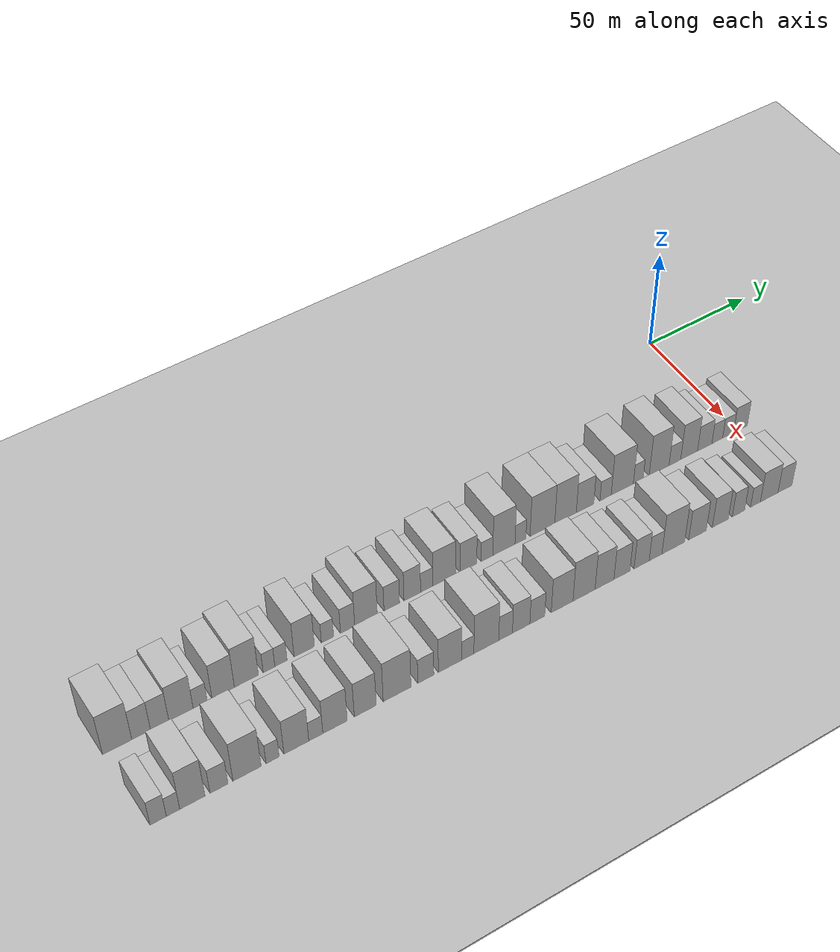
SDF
<sdf version="1.6">
 <world name="default">
  <include><name>ground_plane_1</name><uri>model://HANNAS_ground_plane</uri></include>
  <include>
   <name>ground_plane_2</name>
   <uri>model://HANNAS_ground_plane</uri>
   <pose>100 0 0  0 0 0</pose>
  </include>
  <model name="building_1">
   <static>1</static>
   <pose>50.0000 -282.1918 0 0.000000 0.000000 0.000000</pose>
   <link name="link">
    <pose>0 0 12.00 0 0 0</pose>
    <collision name="collision"><geometry><box><size>20.0000 11.6164 24.0000</size></box></geometry></collision>
    <visual name="visual">
     <cast_shadows>0</cast_shadows>
     <geometry><box><size>20.0000 11.6164 24.0000</size></box></geometry>
     <material>
      <script>
       <uri>model://HANNAS_wall/materials/scripts</uri>
       <uri>model://HANNAS_wall/materials/textures</uri>
       <name>vrc/HANNAS_wall</name>
      </script>
     </material>
    </visual>
   </link>
  </model>
  <model name="building_2">
   <static>1</static>
   <pose>50.0000 -272.6289 0 0.000000 0.000000 0.000000</pose>
   <link name="link">
    <pose>0 0 9.00 0 0 0</pose>
    <collision name="collision"><geometry><box><size>20.0000 7.5093 18.0000</size></box></geometry></collision>
    <visual name="visual">
     <cast_shadows>0</cast_shadows>
     <geometry><box><size>20.0000 7.5093 18.0000</size></box></geometry>
     <material>
      <script>
       <uri>model://HANNAS_wall/materials/scripts</uri>
       <uri>model://HANNAS_wall/materials/textures</uri>
       <name>vrc/HANNAS_wall</name>
      </script>
     </material>
    </visual>
   </link>
  </model>
  <model name="building_3">
   <static>1</static>
   <pose>50.0000 -265.1773 0 0.000000 0.000000 0.000000</pose>
   <link name="link">
    <pose>0 0 9.00 0 0 0</pose>
    <collision name="collision"><geometry><box><size>20.0000 7.3941 18.0000</size></box></geometry></collision>
    <visual name="visual">
     <cast_shadows>0</cast_shadows>
     <geometry><box><size>20.0000 7.3941 18.0000</size></box></geometry>
     <material>
      <script>
       <uri>model://HANNAS_wall/materials/scripts</uri>
       <uri>model://HANNAS_wall/materials/textures</uri>
       <name>vrc/HANNAS_wall</name>
      </script>
     </material>
    </visual>
   </link>
  </model>
  <model name="building_4">
   <static>1</static>
   <pose>50.0000 -256.5117 0 0.000000 0.000000 0.000000</pose>
   <link name="link">
    <pose>0 0 10.50 0 0 0</pose>
    <collision name="collision"><geometry><box><size>20.0000 9.9371 21.0000</size></box></geometry></collision>
    <visual name="visual">
     <cast_shadows>0</cast_shadows>
     <geometry><box><size>20.0000 9.9371 21.0000</size></box></geometry>
     <material>
      <script>
       <uri>model://HANNAS_wall/materials/scripts</uri>
       <uri>model://HANNAS_wall/materials/textures</uri>
       <name>vrc/HANNAS_wall</name>
      </script>
     </material>
    </visual>
   </link>
  </model>
  <model name="building_5">
   <static>1</static>
   <pose>50.0000 -248.6620 0 0.000000 0.000000 0.000000</pose>
   <link name="link">
    <pose>0 0 6.00 0 0 0</pose>
    <collision name="collision"><geometry><box><size>20.0000 5.7622 12.0000</size></box></geometry></collision>
    <visual name="visual">
     <cast_shadows>0</cast_shadows>
     <geometry><box><size>20.0000 5.7622 12.0000</size></box></geometry>
     <material>
      <script>
       <uri>model://HANNAS_wall/materials/scripts</uri>
       <uri>model://HANNAS_wall/materials/textures</uri>
       <name>vrc/HANNAS_wall</name>
      </script>
     </material>
    </visual>
   </link>
  </model>
  <model name="building_6">
   <static>1</static>
   <pose>50.0000 -239.1442 0 0.000000 0.000000 0.000000</pose>
   <link name="link">
    <pose>0 0 10.50 0 0 0</pose>
    <collision name="collision"><geometry><box><size>20.0000 9.2733 21.0000</size></box></geometry></collision>
    <visual name="visual">
     <cast_shadows>0</cast_shadows>
     <geometry><box><size>20.0000 9.2733 21.0000</size></box></geometry>
     <material>
      <script>
       <uri>model://HANNAS_wall/materials/scripts</uri>
       <uri>model://HANNAS_wall/materials/textures</uri>
       <name>vrc/HANNAS_wall</name>
      </script>
     </material>
    </visual>
   </link>
  </model>
  <model name="building_7">
   <static>1</static>
   <pose>50.0000 -229.4706 0 0.000000 0.000000 0.000000</pose>
   <link name="link">
    <pose>0 0 12.00 0 0 0</pose>
    <collision name="collision"><geometry><box><size>20.0000 10.0738 24.0000</size></box></geometry></collision>
    <visual name="visual">
     <cast_shadows>0</cast_shadows>
     <geometry><box><size>20.0000 10.0738 24.0000</size></box></geometry>
     <material>
      <script>
       <uri>model://HANNAS_wall/materials/scripts</uri>
       <uri>model://HANNAS_wall/materials/textures</uri>
       <name>vrc/HANNAS_wall</name>
      </script>
     </material>
    </visual>
   </link>
  </model>
  <model name="building_8">
   <static>1</static>
   <pose>50.0000 -219.9659 0 0.000000 0.000000 0.000000</pose>
   <link name="link">
    <pose>0 0 6.00 0 0 0</pose>
    <collision name="collision"><geometry><box><size>20.0000 4.9356 12.0000</size></box></geometry></collision>
    <visual name="visual">
     <cast_shadows>0</cast_shadows>
     <geometry><box><size>20.0000 4.9356 12.0000</size></box></geometry>
     <material>
      <script>
       <uri>model://HANNAS_wall/materials/scripts</uri>
       <uri>model://HANNAS_wall/materials/textures</uri>
       <name>vrc/HANNAS_wall</name>
      </script>
     </material>
    </visual>
   </link>
  </model>
  <model name="building_9">
   <static>1</static>
   <pose>50.0000 -214.8974 0 0.000000 0.000000 0.000000</pose>
   <link name="link">
    <pose>0 0 6.00 0 0 0</pose>
    <collision name="collision"><geometry><box><size>20.0000 5.2013 12.0000</size></box></geometry></collision>
    <visual name="visual">
     <cast_shadows>0</cast_shadows>
     <geometry><box><size>20.0000 5.2013 12.0000</size></box></geometry>
     <material>
      <script>
       <uri>model://HANNAS_wall/materials/scripts</uri>
       <uri>model://HANNAS_wall/materials/textures</uri>
       <name>vrc/HANNAS_wall</name>
      </script>
     </material>
    </visual>
   </link>
  </model>
  <model name="building_10">
   <static>1</static>
   <pose>50.0000 -204.9406 0 0.000000 0.000000 0.000000</pose>
   <link name="link">
    <pose>0 0 10.50 0 0 0</pose>
    <collision name="collision"><geometry><box><size>20.0000 8.7122 21.0000</size></box></geometry></collision>
    <visual name="visual">
     <cast_shadows>0</cast_shadows>
     <geometry><box><size>20.0000 8.7122 21.0000</size></box></geometry>
     <material>
      <script>
       <uri>model://HANNAS_wall/materials/scripts</uri>
       <uri>model://HANNAS_wall/materials/textures</uri>
       <name>vrc/HANNAS_wall</name>
      </script>
     </material>
    </visual>
   </link>
  </model>
  <model name="building_11">
   <static>1</static>
   <pose>50.0000 -194.9367 0 0.000000 0.000000 0.000000</pose>
   <link name="link">
    <pose>0 0 6.00 0 0 0</pose>
    <collision name="collision"><geometry><box><size>20.0000 5.2956 12.0000</size></box></geometry></collision>
    <visual name="visual">
     <cast_shadows>0</cast_shadows>
     <geometry><box><size>20.0000 5.2956 12.0000</size></box></geometry>
     <material>
      <script>
       <uri>model://HANNAS_wall/materials/scripts</uri>
       <uri>model://HANNAS_wall/materials/textures</uri>
       <name>vrc/HANNAS_wall</name>
      </script>
     </material>
    </visual>
   </link>
  </model>
  <model name="building_12">
   <static>1</static>
   <pose>50.0000 -186.1868 0 0.000000 0.000000 0.000000</pose>
   <link name="link">
    <pose>0 0 7.50 0 0 0</pose>
    <collision name="collision"><geometry><box><size>20.0000 6.2042 15.0000</size></box></geometry></collision>
    <visual name="visual">
     <cast_shadows>0</cast_shadows>
     <geometry><box><size>20.0000 6.2042 15.0000</size></box></geometry>
     <material>
      <script>
       <uri>model://HANNAS_wall/materials/scripts</uri>
       <uri>model://HANNAS_wall/materials/textures</uri>
       <name>vrc/HANNAS_wall</name>
      </script>
     </material>
    </visual>
   </link>
  </model>
  <model name="building_13">
   <static>1</static>
   <pose>50.0000 -178.1175 0 0.000000 0.000000 0.000000</pose>
   <link name="link">
    <pose>0 0 10.50 0 0 0</pose>
    <collision name="collision"><geometry><box><size>20.0000 9.9345 21.0000</size></box></geometry></collision>
    <visual name="visual">
     <cast_shadows>0</cast_shadows>
     <geometry><box><size>20.0000 9.9345 21.0000</size></box></geometry>
     <material>
      <script>
       <uri>model://HANNAS_wall/materials/scripts</uri>
       <uri>model://HANNAS_wall/materials/textures</uri>
       <name>vrc/HANNAS_wall</name>
      </script>
     </material>
    </visual>
   </link>
  </model>
  <model name="building_14">
   <static>1</static>
   <pose>50.0000 -166.7029 0 0.000000 0.000000 0.000000</pose>
   <link name="link">
    <pose>0 0 7.50 0 0 0</pose>
    <collision name="collision"><geometry><box><size>20.0000 6.8947 15.0000</size></box></geometry></collision>
    <visual name="visual">
     <cast_shadows>0</cast_shadows>
     <geometry><box><size>20.0000 6.8947 15.0000</size></box></geometry>
     <material>
      <script>
       <uri>model://HANNAS_wall/materials/scripts</uri>
       <uri>model://HANNAS_wall/materials/textures</uri>
       <name>vrc/HANNAS_wall</name>
      </script>
     </material>
    </visual>
   </link>
  </model>
  <model name="building_15">
   <static>1</static>
   <pose>50.0000 -157.5262 0 0.000000 0.000000 0.000000</pose>
   <link name="link">
    <pose>0 0 9.00 0 0 0</pose>
    <collision name="collision"><geometry><box><size>20.0000 7.4588 18.0000</size></box></geometry></collision>
    <visual name="visual">
     <cast_shadows>0</cast_shadows>
     <geometry><box><size>20.0000 7.4588 18.0000</size></box></geometry>
     <material>
      <script>
       <uri>model://HANNAS_wall/materials/scripts</uri>
       <uri>model://HANNAS_wall/materials/textures</uri>
       <name>vrc/HANNAS_wall</name>
      </script>
     </material>
    </visual>
   </link>
  </model>
  <model name="building_16">
   <static>1</static>
   <pose>50.0000 -151.0587 0 0.000000 0.000000 0.000000</pose>
   <link name="link">
    <pose>0 0 6.00 0 0 0</pose>
    <collision name="collision"><geometry><box><size>20.0000 5.4762 12.0000</size></box></geometry></collision>
    <visual name="visual">
     <cast_shadows>0</cast_shadows>
     <geometry><box><size>20.0000 5.4762 12.0000</size></box></geometry>
     <material>
      <script>
       <uri>model://HANNAS_wall/materials/scripts</uri>
       <uri>model://HANNAS_wall/materials/textures</uri>
       <name>vrc/HANNAS_wall</name>
      </script>
     </material>
    </visual>
   </link>
  </model>
  <model name="building_17">
   <static>1</static>
   <pose>50.0000 -143.1364 0 0.000000 0.000000 0.000000</pose>
   <link name="link">
    <pose>0 0 10.50 0 0 0</pose>
    <collision name="collision"><geometry><box><size>20.0000 10.3685 21.0000</size></box></geometry></collision>
    <visual name="visual">
     <cast_shadows>0</cast_shadows>
     <geometry><box><size>20.0000 10.3685 21.0000</size></box></geometry>
     <material>
      <script>
       <uri>model://HANNAS_wall/materials/scripts</uri>
       <uri>model://HANNAS_wall/materials/textures</uri>
       <name>vrc/HANNAS_wall</name>
      </script>
     </material>
    </visual>
   </link>
  </model>
  <model name="building_18">
   <static>1</static>
   <pose>50.0000 -132.0665 0 0.000000 0.000000 0.000000</pose>
   <link name="link">
    <pose>0 0 9.00 0 0 0</pose>
    <collision name="collision"><geometry><box><size>20.0000 7.7713 18.0000</size></box></geometry></collision>
    <visual name="visual">
     <cast_shadows>0</cast_shadows>
     <geometry><box><size>20.0000 7.7713 18.0000</size></box></geometry>
     <material>
      <script>
       <uri>model://HANNAS_wall/materials/scripts</uri>
       <uri>model://HANNAS_wall/materials/textures</uri>
       <name>vrc/HANNAS_wall</name>
      </script>
     </material>
    </visual>
   </link>
  </model>
  <model name="building_19">
   <static>1</static>
   <pose>50.0000 -123.4690 0 0.000000 0.000000 0.000000</pose>
   <link name="link">
    <pose>0 0 6.00 0 0 0</pose>
    <collision name="collision"><geometry><box><size>20.0000 5.4237 12.0000</size></box></geometry></collision>
    <visual name="visual">
     <cast_shadows>0</cast_shadows>
     <geometry><box><size>20.0000 5.4237 12.0000</size></box></geometry>
     <material>
      <script>
       <uri>model://HANNAS_wall/materials/scripts</uri>
       <uri>model://HANNAS_wall/materials/textures</uri>
       <name>vrc/HANNAS_wall</name>
      </script>
     </material>
    </visual>
   </link>
  </model>
  <model name="building_20">
   <static>1</static>
   <pose>50.0000 -115.5682 0 0.000000 0.000000 0.000000</pose>
   <link name="link">
    <pose>0 0 12.00 0 0 0</pose>
    <collision name="collision"><geometry><box><size>20.0000 10.3779 24.0000</size></box></geometry></collision>
    <visual name="visual">
     <cast_shadows>0</cast_shadows>
     <geometry><box><size>20.0000 10.3779 24.0000</size></box></geometry>
     <material>
      <script>
       <uri>model://HANNAS_wall/materials/scripts</uri>
       <uri>model://HANNAS_wall/materials/textures</uri>
       <name>vrc/HANNAS_wall</name>
      </script>
     </material>
    </visual>
   </link>
  </model>
  <model name="building_21">
   <static>1</static>
   <pose>50.0000 -107.8288 0 0.000000 0.000000 0.000000</pose>
   <link name="link">
    <pose>0 0 6.00 0 0 0</pose>
    <collision name="collision"><geometry><box><size>20.0000 5.1009 12.0000</size></box></geometry></collision>
    <visual name="visual">
     <cast_shadows>0</cast_shadows>
     <geometry><box><size>20.0000 5.1009 12.0000</size></box></geometry>
     <material>
      <script>
       <uri>model://HANNAS_wall/materials/scripts</uri>
       <uri>model://HANNAS_wall/materials/textures</uri>
       <name>vrc/HANNAS_wall</name>
      </script>
     </material>
    </visual>
   </link>
  </model>
  <model name="building_22">
   <static>1</static>
   <pose>50.0000 -97.4031 0 0.000000 0.000000 0.000000</pose>
   <link name="link">
    <pose>0 0 12.00 0 0 0</pose>
    <collision name="collision"><geometry><box><size>20.0000 11.7504 24.0000</size></box></geometry></collision>
    <visual name="visual">
     <cast_shadows>0</cast_shadows>
     <geometry><box><size>20.0000 11.7504 24.0000</size></box></geometry>
     <material>
      <script>
       <uri>model://HANNAS_wall/materials/scripts</uri>
       <uri>model://HANNAS_wall/materials/textures</uri>
       <name>vrc/HANNAS_wall</name>
      </script>
     </material>
    </visual>
   </link>
  </model>
  <model name="building_23">
   <static>1</static>
   <pose>50.0000 -86.3627 0 0.000000 0.000000 0.000000</pose>
   <link name="link">
    <pose>0 0 12.00 0 0 0</pose>
    <collision name="collision"><geometry><box><size>20.0000 10.3305 24.0000</size></box></geometry></collision>
    <visual name="visual">
     <cast_shadows>0</cast_shadows>
     <geometry><box><size>20.0000 10.3305 24.0000</size></box></geometry>
     <material>
      <script>
       <uri>model://HANNAS_wall/materials/scripts</uri>
       <uri>model://HANNAS_wall/materials/textures</uri>
       <name>vrc/HANNAS_wall</name>
      </script>
     </material>
    </visual>
   </link>
  </model>
  <model name="building_24">
   <static>1</static>
   <pose>50.0000 -76.9648 0 0.000000 0.000000 0.000000</pose>
   <link name="link">
    <pose>0 0 9.00 0 0 0</pose>
    <collision name="collision"><geometry><box><size>20.0000 8.4652 18.0000</size></box></geometry></collision>
    <visual name="visual">
     <cast_shadows>0</cast_shadows>
     <geometry><box><size>20.0000 8.4652 18.0000</size></box></geometry>
     <material>
      <script>
       <uri>model://HANNAS_wall/materials/scripts</uri>
       <uri>model://HANNAS_wall/materials/textures</uri>
       <name>vrc/HANNAS_wall</name>
      </script>
     </material>
    </visual>
   </link>
  </model>
  <model name="building_25">
   <static>1</static>
   <pose>50.0000 -66.9805 0 0.000000 0.000000 0.000000</pose>
   <link name="link">
    <pose>0 0 6.00 0 0 0</pose>
    <collision name="collision"><geometry><box><size>20.0000 5.5034 12.0000</size></box></geometry></collision>
    <visual name="visual">
     <cast_shadows>0</cast_shadows>
     <geometry><box><size>20.0000 5.5034 12.0000</size></box></geometry>
     <material>
      <script>
       <uri>model://HANNAS_wall/materials/scripts</uri>
       <uri>model://HANNAS_wall/materials/textures</uri>
       <name>vrc/HANNAS_wall</name>
      </script>
     </material>
    </visual>
   </link>
  </model>
  <model name="building_26">
   <static>1</static>
   <pose>50.0000 -58.7749 0 0.000000 0.000000 0.000000</pose>
   <link name="link">
    <pose>0 0 12.00 0 0 0</pose>
    <collision name="collision"><geometry><box><size>20.0000 10.9078 24.0000</size></box></geometry></collision>
    <visual name="visual">
     <cast_shadows>0</cast_shadows>
     <geometry><box><size>20.0000 10.9078 24.0000</size></box></geometry>
     <material>
      <script>
       <uri>model://HANNAS_wall/materials/scripts</uri>
       <uri>model://HANNAS_wall/materials/textures</uri>
       <name>vrc/HANNAS_wall</name>
      </script>
     </material>
    </visual>
   </link>
  </model>
  <model name="building_27">
   <static>1</static>
   <pose>50.0000 -50.8894 0 0.000000 0.000000 0.000000</pose>
   <link name="link">
    <pose>0 0 6.00 0 0 0</pose>
    <collision name="collision"><geometry><box><size>20.0000 4.8633 12.0000</size></box></geometry></collision>
    <visual name="visual">
     <cast_shadows>0</cast_shadows>
     <geometry><box><size>20.0000 4.8633 12.0000</size></box></geometry>
     <material>
      <script>
       <uri>model://HANNAS_wall/materials/scripts</uri>
       <uri>model://HANNAS_wall/materials/textures</uri>
       <name>vrc/HANNAS_wall</name>
      </script>
     </material>
    </visual>
   </link>
  </model>
  <model name="building_28">
   <static>1</static>
   <pose>50.0000 -40.4735 0 0.000000 0.000000 0.000000</pose>
   <link name="link">
    <pose>0 0 12.00 0 0 0</pose>
    <collision name="collision"><geometry><box><size>20.0000 9.9685 24.0000</size></box></geometry></collision>
    <visual name="visual">
     <cast_shadows>0</cast_shadows>
     <geometry><box><size>20.0000 9.9685 24.0000</size></box></geometry>
     <material>
      <script>
       <uri>model://HANNAS_wall/materials/scripts</uri>
       <uri>model://HANNAS_wall/materials/textures</uri>
       <name>vrc/HANNAS_wall</name>
      </script>
     </material>
    </visual>
   </link>
  </model>
  <model name="building_29">
   <static>1</static>
   <pose>50.0000 -32.5656 0 0.000000 0.000000 0.000000</pose>
   <link name="link">
    <pose>0 0 6.00 0 0 0</pose>
    <collision name="collision"><geometry><box><size>20.0000 5.8473 12.0000</size></box></geometry></collision>
    <visual name="visual">
     <cast_shadows>0</cast_shadows>
     <geometry><box><size>20.0000 5.8473 12.0000</size></box></geometry>
     <material>
      <script>
       <uri>model://HANNAS_wall/materials/scripts</uri>
       <uri>model://HANNAS_wall/materials/textures</uri>
       <name>vrc/HANNAS_wall</name>
      </script>
     </material>
    </visual>
   </link>
  </model>
  <model name="building_30">
   <static>1</static>
   <pose>50.0000 -25.3469 0 0.000000 0.000000 0.000000</pose>
   <link name="link">
    <pose>0 0 10.50 0 0 0</pose>
    <collision name="collision"><geometry><box><size>20.0000 8.5902 21.0000</size></box></geometry></collision>
    <visual name="visual">
     <cast_shadows>0</cast_shadows>
     <geometry><box><size>20.0000 8.5902 21.0000</size></box></geometry>
     <material>
      <script>
       <uri>model://HANNAS_wall/materials/scripts</uri>
       <uri>model://HANNAS_wall/materials/textures</uri>
       <name>vrc/HANNAS_wall</name>
      </script>
     </material>
    </visual>
   </link>
  </model>
  <model name="building_31">
   <static>1</static>
   <pose>50.0000 -17.3858 0 0.000000 0.000000 0.000000</pose>
   <link name="link">
    <pose>0 0 7.50 0 0 0</pose>
    <collision name="collision"><geometry><box><size>20.0000 7.3321 15.0000</size></box></geometry></collision>
    <visual name="visual">
     <cast_shadows>0</cast_shadows>
     <geometry><box><size>20.0000 7.3321 15.0000</size></box></geometry>
     <material>
      <script>
       <uri>model://HANNAS_wall/materials/scripts</uri>
       <uri>model://HANNAS_wall/materials/textures</uri>
       <name>vrc/HANNAS_wall</name>
      </script>
     </material>
    </visual>
   </link>
  </model>
  <model name="building_32">
   <static>1</static>
   <pose>50.0000 -10.9680 0 0.000000 0.000000 0.000000</pose>
   <link name="link">
    <pose>0 0 6.00 0 0 0</pose>
    <collision name="collision"><geometry><box><size>20.0000 5.5035 12.0000</size></box></geometry></collision>
    <visual name="visual">
     <cast_shadows>0</cast_shadows>
     <geometry><box><size>20.0000 5.5035 12.0000</size></box></geometry>
     <material>
      <script>
       <uri>model://HANNAS_wall/materials/scripts</uri>
       <uri>model://HANNAS_wall/materials/textures</uri>
       <name>vrc/HANNAS_wall</name>
      </script>
     </material>
    </visual>
   </link>
  </model>
  <model name="building_33">
   <static>1</static>
   <pose>50.0000 -5.3943 0 0.000000 0.000000 0.000000</pose>
   <link name="link">
    <pose>0 0 6.00 0 0 0</pose>
    <collision name="collision"><geometry><box><size>20.0000 5.6439 12.0000</size></box></geometry></collision>
    <visual name="visual">
     <cast_shadows>0</cast_shadows>
     <geometry><box><size>20.0000 5.6439 12.0000</size></box></geometry>
     <material>
      <script>
       <uri>model://HANNAS_wall/materials/scripts</uri>
       <uri>model://HANNAS_wall/materials/textures</uri>
       <name>vrc/HANNAS_wall</name>
      </script>
     </material>
    </visual>
   </link>
  </model>
  <model name="building_34">
   <static>1</static>
   <pose>50.0000 0.9988 0 0.000000 0.000000 0.000000</pose>
   <link name="link">
    <pose>0 0 7.50 0 0 0</pose>
    <collision name="collision"><geometry><box><size>20.0000 7.1422 15.0000</size></box></geometry></collision>
    <visual name="visual">
     <cast_shadows>0</cast_shadows>
     <geometry><box><size>20.0000 7.1422 15.0000</size></box></geometry>
     <material>
      <script>
       <uri>model://HANNAS_wall/materials/scripts</uri>
       <uri>model://HANNAS_wall/materials/textures</uri>
       <name>vrc/HANNAS_wall</name>
      </script>
     </material>
    </visual>
   </link>
  </model>
  <model name="building_66">
   <static>1</static>
   <pose>85.0000 -283.8092 0 0.000000 0.000000 0.000000</pose>
   <link name="link">
    <pose>0 0 7.50 0 0 0</pose>
    <collision name="collision"><geometry><box><size>20.0000 6.3816 15.0000</size></box></geometry></collision>
    <visual name="visual">
     <cast_shadows>0</cast_shadows>
     <geometry><box><size>20.0000 6.3816 15.0000</size></box></geometry>
     <material>
      <script>
       <uri>model://HANNAS_wall/materials/scripts</uri>
       <uri>model://HANNAS_wall/materials/textures</uri>
       <name>vrc/HANNAS_wall</name>
      </script>
     </material>
    </visual>
   </link>
  </model>
  <model name="building_67">
   <static>1</static>
   <pose>85.0000 -277.9953 0 0.000000 0.000000 0.000000</pose>
   <link name="link">
    <pose>0 0 6.00 0 0 0</pose>
    <collision name="collision"><geometry><box><size>20.0000 5.2462 12.0000</size></box></geometry></collision>
    <visual name="visual">
     <cast_shadows>0</cast_shadows>
     <geometry><box><size>20.0000 5.2462 12.0000</size></box></geometry>
     <material>
      <script>
       <uri>model://HANNAS_wall/materials/scripts</uri>
       <uri>model://HANNAS_wall/materials/textures</uri>
       <name>vrc/HANNAS_wall</name>
      </script>
     </material>
    </visual>
   </link>
  </model>
  <model name="building_68">
   <static>1</static>
   <pose>85.0000 -270.3842 0 0.000000 0.000000 0.000000</pose>
   <link name="link">
    <pose>0 0 12.00 0 0 0</pose>
    <collision name="collision"><geometry><box><size>20.0000 9.9761 24.0000</size></box></geometry></collision>
    <visual name="visual">
     <cast_shadows>0</cast_shadows>
     <geometry><box><size>20.0000 9.9761 24.0000</size></box></geometry>
     <material>
      <script>
       <uri>model://HANNAS_wall/materials/scripts</uri>
       <uri>model://HANNAS_wall/materials/textures</uri>
       <name>vrc/HANNAS_wall</name>
      </script>
     </material>
    </visual>
   </link>
  </model>
  <model name="building_69">
   <static>1</static>
   <pose>85.0000 -259.8183 0 0.000000 0.000000 0.000000</pose>
   <link name="link">
    <pose>0 0 7.50 0 0 0</pose>
    <collision name="collision"><geometry><box><size>20.0000 7.1557 15.0000</size></box></geometry></collision>
    <visual name="visual">
     <cast_shadows>0</cast_shadows>
     <geometry><box><size>20.0000 7.1557 15.0000</size></box></geometry>
     <material>
      <script>
       <uri>model://HANNAS_wall/materials/scripts</uri>
       <uri>model://HANNAS_wall/materials/textures</uri>
       <name>vrc/HANNAS_wall</name>
      </script>
     </material>
    </visual>
   </link>
  </model>
  <model name="building_70">
   <static>1</static>
   <pose>85.0000 -248.5477 0 0.000000 0.000000 0.000000</pose>
   <link name="link">
    <pose>0 0 12.00 0 0 0</pose>
    <collision name="collision"><geometry><box><size>20.0000 11.3855 24.0000</size></box></geometry></collision>
    <visual name="visual">
     <cast_shadows>0</cast_shadows>
     <geometry><box><size>20.0000 11.3855 24.0000</size></box></geometry>
     <material>
      <script>
       <uri>model://HANNAS_wall/materials/scripts</uri>
       <uri>model://HANNAS_wall/materials/textures</uri>
       <name>vrc/HANNAS_wall</name>
      </script>
     </material>
    </visual>
   </link>
  </model>
  <model name="building_71">
   <static>1</static>
   <pose>85.0000 -238.1983 0 0.000000 0.000000 0.000000</pose>
   <link name="link">
    <pose>0 0 6.00 0 0 0</pose>
    <collision name="collision"><geometry><box><size>20.0000 5.3133 12.0000</size></box></geometry></collision>
    <visual name="visual">
     <cast_shadows>0</cast_shadows>
     <geometry><box><size>20.0000 5.3133 12.0000</size></box></geometry>
     <material>
      <script>
       <uri>model://HANNAS_wall/materials/scripts</uri>
       <uri>model://HANNAS_wall/materials/textures</uri>
       <name>vrc/HANNAS_wall</name>
      </script>
     </material>
    </visual>
   </link>
  </model>
  <model name="building_72">
   <static>1</static>
   <pose>85.0000 -228.4284 0 0.000000 0.000000 0.000000</pose>
   <link name="link">
    <pose>0 0 10.50 0 0 0</pose>
    <collision name="collision"><geometry><box><size>20.0000 10.2266 21.0000</size></box></geometry></collision>
    <visual name="visual">
     <cast_shadows>0</cast_shadows>
     <geometry><box><size>20.0000 10.2266 21.0000</size></box></geometry>
     <material>
      <script>
       <uri>model://HANNAS_wall/materials/scripts</uri>
       <uri>model://HANNAS_wall/materials/textures</uri>
       <name>vrc/HANNAS_wall</name>
      </script>
     </material>
    </visual>
   </link>
  </model>
  <model name="building_73">
   <static>1</static>
   <pose>85.0000 -220.3913 0 0.000000 0.000000 0.000000</pose>
   <link name="link">
    <pose>0 0 6.00 0 0 0</pose>
    <collision name="collision"><geometry><box><size>20.0000 5.8476 12.0000</size></box></geometry></collision>
    <visual name="visual">
     <cast_shadows>0</cast_shadows>
     <geometry><box><size>20.0000 5.8476 12.0000</size></box></geometry>
     <material>
      <script>
       <uri>model://HANNAS_wall/materials/scripts</uri>
       <uri>model://HANNAS_wall/materials/textures</uri>
       <name>vrc/HANNAS_wall</name>
      </script>
     </material>
    </visual>
   </link>
  </model>
  <model name="building_74">
   <static>1</static>
   <pose>85.0000 -212.3666 0 0.000000 0.000000 0.000000</pose>
   <link name="link">
    <pose>0 0 10.50 0 0 0</pose>
    <collision name="collision"><geometry><box><size>20.0000 10.2017 21.0000</size></box></geometry></collision>
    <visual name="visual">
     <cast_shadows>0</cast_shadows>
     <geometry><box><size>20.0000 10.2017 21.0000</size></box></geometry>
     <material>
      <script>
       <uri>model://HANNAS_wall/materials/scripts</uri>
       <uri>model://HANNAS_wall/materials/textures</uri>
       <name>vrc/HANNAS_wall</name>
      </script>
     </material>
    </visual>
   </link>
  </model>
  <model name="building_75">
   <static>1</static>
   <pose>85.0000 -199.6372 0 0.000000 0.000000 0.000000</pose>
   <link name="link">
    <pose>0 0 10.50 0 0 0</pose>
    <collision name="collision"><geometry><box><size>20.0000 9.2571 21.0000</size></box></geometry></collision>
    <visual name="visual">
     <cast_shadows>0</cast_shadows>
     <geometry><box><size>20.0000 9.2571 21.0000</size></box></geometry>
     <material>
      <script>
       <uri>model://HANNAS_wall/materials/scripts</uri>
       <uri>model://HANNAS_wall/materials/textures</uri>
       <name>vrc/HANNAS_wall</name>
      </script>
     </material>
    </visual>
   </link>
  </model>
  <model name="building_76">
   <static>1</static>
   <pose>85.0000 -186.0572 0 0.000000 0.000000 0.000000</pose>
   <link name="link">
    <pose>0 0 12.00 0 0 0</pose>
    <collision name="collision"><geometry><box><size>20.0000 11.9028 24.0000</size></box></geometry></collision>
    <visual name="visual">
     <cast_shadows>0</cast_shadows>
     <geometry><box><size>20.0000 11.9028 24.0000</size></box></geometry>
     <material>
      <script>
       <uri>model://HANNAS_wall/materials/scripts</uri>
       <uri>model://HANNAS_wall/materials/textures</uri>
       <name>vrc/HANNAS_wall</name>
      </script>
     </material>
    </visual>
   </link>
  </model>
  <model name="building_77">
   <static>1</static>
   <pose>85.0000 -173.6278 0 0.000000 0.000000 0.000000</pose>
   <link name="link">
    <pose>0 0 7.50 0 0 0</pose>
    <collision name="collision"><geometry><box><size>20.0000 6.9560 15.0000</size></box></geometry></collision>
    <visual name="visual">
     <cast_shadows>0</cast_shadows>
     <geometry><box><size>20.0000 6.9560 15.0000</size></box></geometry>
     <material>
      <script>
       <uri>model://HANNAS_wall/materials/scripts</uri>
       <uri>model://HANNAS_wall/materials/textures</uri>
       <name>vrc/HANNAS_wall</name>
      </script>
     </material>
    </visual>
   </link>
  </model>
  <model name="building_78">
   <static>1</static>
   <pose>85.0000 -163.0316 0 0.000000 0.000000 0.000000</pose>
   <link name="link">
    <pose>0 0 10.50 0 0 0</pose>
    <collision name="collision"><geometry><box><size>20.0000 10.2364 21.0000</size></box></geometry></collision>
    <visual name="visual">
     <cast_shadows>0</cast_shadows>
     <geometry><box><size>20.0000 10.2364 21.0000</size></box></geometry>
     <material>
      <script>
       <uri>model://HANNAS_wall/materials/scripts</uri>
       <uri>model://HANNAS_wall/materials/textures</uri>
       <name>vrc/HANNAS_wall</name>
      </script>
     </material>
    </visual>
   </link>
  </model>
  <model name="building_79">
   <static>1</static>
   <pose>85.0000 -155.1996 0 0.000000 0.000000 0.000000</pose>
   <link name="link">
    <pose>0 0 6.00 0 0 0</pose>
    <collision name="collision"><geometry><box><size>20.0000 5.4276 12.0000</size></box></geometry></collision>
    <visual name="visual">
     <cast_shadows>0</cast_shadows>
     <geometry><box><size>20.0000 5.4276 12.0000</size></box></geometry>
     <material>
      <script>
       <uri>model://HANNAS_wall/materials/scripts</uri>
       <uri>model://HANNAS_wall/materials/textures</uri>
       <name>vrc/HANNAS_wall</name>
      </script>
     </material>
    </visual>
   </link>
  </model>
  <model name="building_80">
   <static>1</static>
   <pose>85.0000 -146.9204 0 0.000000 0.000000 0.000000</pose>
   <link name="link">
    <pose>0 0 12.00 0 0 0</pose>
    <collision name="collision"><geometry><box><size>20.0000 11.1309 24.0000</size></box></geometry></collision>
    <visual name="visual">
     <cast_shadows>0</cast_shadows>
     <geometry><box><size>20.0000 11.1309 24.0000</size></box></geometry>
     <material>
      <script>
       <uri>model://HANNAS_wall/materials/scripts</uri>
       <uri>model://HANNAS_wall/materials/textures</uri>
       <name>vrc/HANNAS_wall</name>
      </script>
     </material>
    </visual>
   </link>
  </model>
  <model name="building_81">
   <static>1</static>
   <pose>85.0000 -138.2822 0 0.000000 0.000000 0.000000</pose>
   <link name="link">
    <pose>0 0 7.50 0 0 0</pose>
    <collision name="collision"><geometry><box><size>20.0000 6.1455 15.0000</size></box></geometry></collision>
    <visual name="visual">
     <cast_shadows>0</cast_shadows>
     <geometry><box><size>20.0000 6.1455 15.0000</size></box></geometry>
     <material>
      <script>
       <uri>model://HANNAS_wall/materials/scripts</uri>
       <uri>model://HANNAS_wall/materials/textures</uri>
       <name>vrc/HANNAS_wall</name>
      </script>
     </material>
    </visual>
   </link>
  </model>
  <model name="building_82">
   <static>1</static>
   <pose>85.0000 -131.2576 0 0.000000 0.000000 0.000000</pose>
   <link name="link">
    <pose>0 0 9.00 0 0 0</pose>
    <collision name="collision"><geometry><box><size>20.0000 7.9037 18.0000</size></box></geometry></collision>
    <visual name="visual">
     <cast_shadows>0</cast_shadows>
     <geometry><box><size>20.0000 7.9037 18.0000</size></box></geometry>
     <material>
      <script>
       <uri>model://HANNAS_wall/materials/scripts</uri>
       <uri>model://HANNAS_wall/materials/textures</uri>
       <name>vrc/HANNAS_wall</name>
      </script>
     </material>
    </visual>
   </link>
  </model>
  <model name="building_83">
   <static>1</static>
   <pose>85.0000 -123.9089 0 0.000000 0.000000 0.000000</pose>
   <link name="link">
    <pose>0 0 7.50 0 0 0</pose>
    <collision name="collision"><geometry><box><size>20.0000 6.7936 15.0000</size></box></geometry></collision>
    <visual name="visual">
     <cast_shadows>0</cast_shadows>
     <geometry><box><size>20.0000 6.7936 15.0000</size></box></geometry>
     <material>
      <script>
       <uri>model://HANNAS_wall/materials/scripts</uri>
       <uri>model://HANNAS_wall/materials/textures</uri>
       <name>vrc/HANNAS_wall</name>
      </script>
     </material>
    </visual>
   </link>
  </model>
  <model name="building_84">
   <static>1</static>
   <pose>85.0000 -112.4892 0 0.000000 0.000000 0.000000</pose>
   <link name="link">
    <pose>0 0 10.50 0 0 0</pose>
    <collision name="collision"><geometry><box><size>20.0000 10.0457 21.0000</size></box></geometry></collision>
    <visual name="visual">
     <cast_shadows>0</cast_shadows>
     <geometry><box><size>20.0000 10.0457 21.0000</size></box></geometry>
     <material>
      <script>
       <uri>model://HANNAS_wall/materials/scripts</uri>
       <uri>model://HANNAS_wall/materials/textures</uri>
       <name>vrc/HANNAS_wall</name>
      </script>
     </material>
    </visual>
   </link>
  </model>
  <model name="building_85">
   <static>1</static>
   <pose>85.0000 -102.3121 0 0.000000 0.000000 0.000000</pose>
   <link name="link">
    <pose>0 0 12.00 0 0 0</pose>
    <collision name="collision"><geometry><box><size>20.0000 10.3086 24.0000</size></box></geometry></collision>
    <visual name="visual">
     <cast_shadows>0</cast_shadows>
     <geometry><box><size>20.0000 10.3086 24.0000</size></box></geometry>
     <material>
      <script>
       <uri>model://HANNAS_wall/materials/scripts</uri>
       <uri>model://HANNAS_wall/materials/textures</uri>
       <name>vrc/HANNAS_wall</name>
      </script>
     </material>
    </visual>
   </link>
  </model>
  <model name="building_86">
   <static>1</static>
   <pose>85.0000 -92.7116 0 0.000000 0.000000 0.000000</pose>
   <link name="link">
    <pose>0 0 10.50 0 0 0</pose>
    <collision name="collision"><geometry><box><size>20.0000 8.8922 21.0000</size></box></geometry></collision>
    <visual name="visual">
     <cast_shadows>0</cast_shadows>
     <geometry><box><size>20.0000 8.8922 21.0000</size></box></geometry>
     <material>
      <script>
       <uri>model://HANNAS_wall/materials/scripts</uri>
       <uri>model://HANNAS_wall/materials/textures</uri>
       <name>vrc/HANNAS_wall</name>
      </script>
     </material>
    </visual>
   </link>
  </model>
  <model name="building_87">
   <static>1</static>
   <pose>85.0000 -84.4972 0 0.000000 0.000000 0.000000</pose>
   <link name="link">
    <pose>0 0 9.00 0 0 0</pose>
    <collision name="collision"><geometry><box><size>20.0000 7.5366 18.0000</size></box></geometry></collision>
    <visual name="visual">
     <cast_shadows>0</cast_shadows>
     <geometry><box><size>20.0000 7.5366 18.0000</size></box></geometry>
     <material>
      <script>
       <uri>model://HANNAS_wall/materials/scripts</uri>
       <uri>model://HANNAS_wall/materials/textures</uri>
       <name>vrc/HANNAS_wall</name>
      </script>
     </material>
    </visual>
   </link>
  </model>
  <model name="building_88">
   <static>1</static>
   <pose>85.0000 -75.1222 0 0.000000 0.000000 0.000000</pose>
   <link name="link">
    <pose>0 0 9.00 0 0 0</pose>
    <collision name="collision"><geometry><box><size>20.0000 7.2134 18.0000</size></box></geometry></collision>
    <visual name="visual">
     <cast_shadows>0</cast_shadows>
     <geometry><box><size>20.0000 7.2134 18.0000</size></box></geometry>
     <material>
      <script>
       <uri>model://HANNAS_wall/materials/scripts</uri>
       <uri>model://HANNAS_wall/materials/textures</uri>
       <name>vrc/HANNAS_wall</name>
      </script>
     </material>
    </visual>
   </link>
  </model>
  <model name="building_89">
   <static>1</static>
   <pose>85.0000 -68.4326 0 0.000000 0.000000 0.000000</pose>
   <link name="link">
    <pose>0 0 7.50 0 0 0</pose>
    <collision name="collision"><geometry><box><size>20.0000 6.1658 15.0000</size></box></geometry></collision>
    <visual name="visual">
     <cast_shadows>0</cast_shadows>
     <geometry><box><size>20.0000 6.1658 15.0000</size></box></geometry>
     <material>
      <script>
       <uri>model://HANNAS_wall/materials/scripts</uri>
       <uri>model://HANNAS_wall/materials/textures</uri>
       <name>vrc/HANNAS_wall</name>
      </script>
     </material>
    </visual>
   </link>
  </model>
  <model name="building_90">
   <static>1</static>
   <pose>85.0000 -59.8271 0 0.000000 0.000000 0.000000</pose>
   <link name="link">
    <pose>0 0 12.00 0 0 0</pose>
    <collision name="collision"><geometry><box><size>20.0000 11.0451 24.0000</size></box></geometry></collision>
    <visual name="visual">
     <cast_shadows>0</cast_shadows>
     <geometry><box><size>20.0000 11.0451 24.0000</size></box></geometry>
     <material>
      <script>
       <uri>model://HANNAS_wall/materials/scripts</uri>
       <uri>model://HANNAS_wall/materials/textures</uri>
       <name>vrc/HANNAS_wall</name>
      </script>
     </material>
    </visual>
   </link>
  </model>
  <model name="building_91">
   <static>1</static>
   <pose>85.0000 -47.9955 0 0.000000 0.000000 0.000000</pose>
   <link name="link">
    <pose>0 0 9.00 0 0 0</pose>
    <collision name="collision"><geometry><box><size>20.0000 8.6182 18.0000</size></box></geometry></collision>
    <visual name="visual">
     <cast_shadows>0</cast_shadows>
     <geometry><box><size>20.0000 8.6182 18.0000</size></box></geometry>
     <material>
      <script>
       <uri>model://HANNAS_wall/materials/scripts</uri>
       <uri>model://HANNAS_wall/materials/textures</uri>
       <name>vrc/HANNAS_wall</name>
      </script>
     </material>
    </visual>
   </link>
  </model>
  <model name="building_92">
   <static>1</static>
   <pose>85.0000 -36.7352 0 0.000000 0.000000 0.000000</pose>
   <link name="link">
    <pose>0 0 9.00 0 0 0</pose>
    <collision name="collision"><geometry><box><size>20.0000 7.9024 18.0000</size></box></geometry></collision>
    <visual name="visual">
     <cast_shadows>0</cast_shadows>
     <geometry><box><size>20.0000 7.9024 18.0000</size></box></geometry>
     <material>
      <script>
       <uri>model://HANNAS_wall/materials/scripts</uri>
       <uri>model://HANNAS_wall/materials/textures</uri>
       <name>vrc/HANNAS_wall</name>
      </script>
     </material>
    </visual>
   </link>
  </model>
  <model name="building_93">
   <static>1</static>
   <pose>85.0000 -27.7069 0 0.000000 0.000000 0.000000</pose>
   <link name="link">
    <pose>0 0 7.50 0 0 0</pose>
    <collision name="collision"><geometry><box><size>20.0000 6.1543 15.0000</size></box></geometry></collision>
    <visual name="visual">
     <cast_shadows>0</cast_shadows>
     <geometry><box><size>20.0000 6.1543 15.0000</size></box></geometry>
     <material>
      <script>
       <uri>model://HANNAS_wall/materials/scripts</uri>
       <uri>model://HANNAS_wall/materials/textures</uri>
       <name>vrc/HANNAS_wall</name>
      </script>
     </material>
    </visual>
   </link>
  </model>
  <model name="building_94">
   <static>1</static>
   <pose>85.0000 -19.1581 0 0.000000 0.000000 0.000000</pose>
   <link name="link">
    <pose>0 0 6.00 0 0 0</pose>
    <collision name="collision"><geometry><box><size>20.0000 4.9432 12.0000</size></box></geometry></collision>
    <visual name="visual">
     <cast_shadows>0</cast_shadows>
     <geometry><box><size>20.0000 4.9432 12.0000</size></box></geometry>
     <material>
      <script>
       <uri>model://HANNAS_wall/materials/scripts</uri>
       <uri>model://HANNAS_wall/materials/textures</uri>
       <name>vrc/HANNAS_wall</name>
      </script>
     </material>
    </visual>
   </link>
  </model>
  <model name="building_95">
   <static>1</static>
   <pose>85.0000 -12.2091 0 0.000000 0.000000 0.000000</pose>
   <link name="link">
    <pose>0 0 9.00 0 0 0</pose>
    <collision name="collision"><geometry><box><size>20.0000 8.9547 18.0000</size></box></geometry></collision>
    <visual name="visual">
     <cast_shadows>0</cast_shadows>
     <geometry><box><size>20.0000 8.9547 18.0000</size></box></geometry>
     <material>
      <script>
       <uri>model://HANNAS_wall/materials/scripts</uri>
       <uri>model://HANNAS_wall/materials/textures</uri>
       <name>vrc/HANNAS_wall</name>
      </script>
     </material>
    </visual>
   </link>
  </model>
  <model name="building_96">
   <static>1</static>
   <pose>85.0000 -4.1672 0 0.000000 0.000000 0.000000</pose>
   <link name="link">
    <pose>0 0 7.50 0 0 0</pose>
    <collision name="collision"><geometry><box><size>20.0000 7.1292 15.0000</size></box></geometry></collision>
    <visual name="visual">
     <cast_shadows>0</cast_shadows>
     <geometry><box><size>20.0000 7.1292 15.0000</size></box></geometry>
     <material>
      <script>
       <uri>model://HANNAS_wall/materials/scripts</uri>
       <uri>model://HANNAS_wall/materials/textures</uri>
       <name>vrc/HANNAS_wall</name>
      </script>
     </material>
    </visual>
   </link>
  </model>
 </world>
</sdf>
